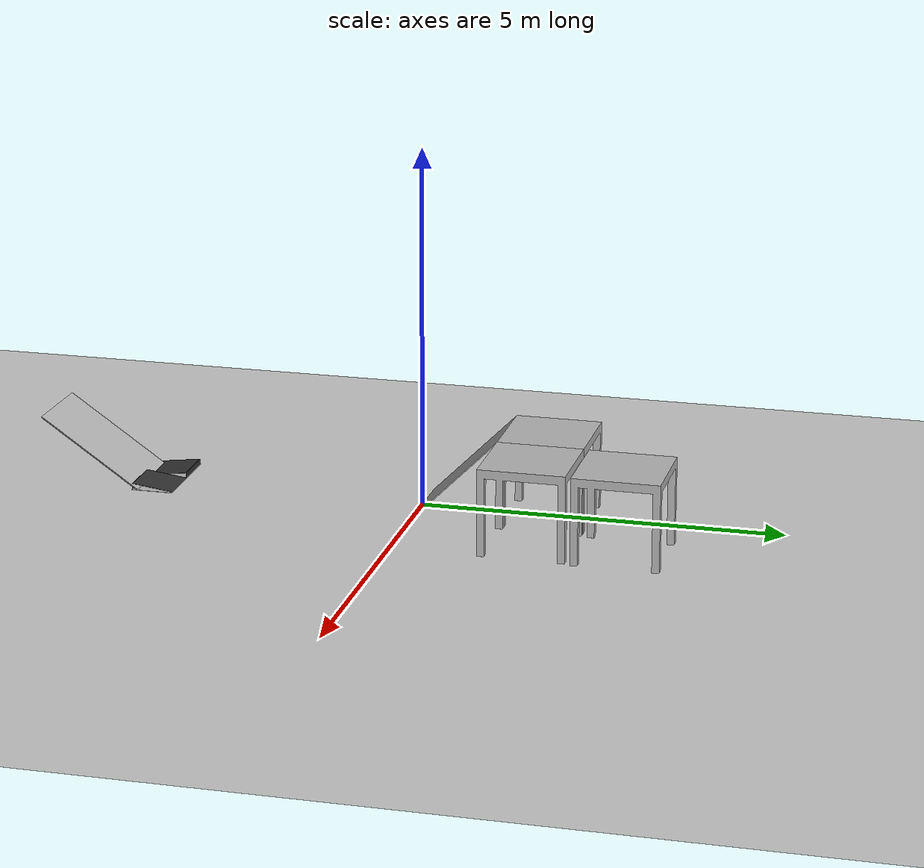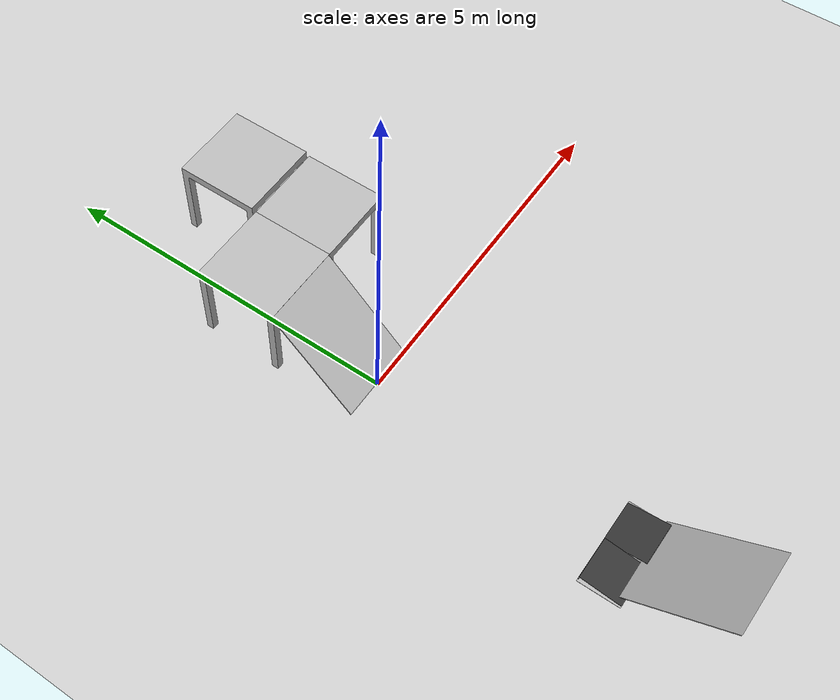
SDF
<sdf version="1.6">
 <world name="default">
  <light name="sun" type="directional">
   <pose>0 0 10 0 -0 0</pose>
   <diffuse>0.8 0.8 0.8 1</diffuse>
   <specular>0.1 0.1 0.1 1</specular>
   <attenuation>
    <range>1000</range>
    <constant>0.9</constant>
    <linear>0.01</linear>
    <quadratic>0.001</quadratic>
   </attenuation>
   <direction>-0.5 0.5 -1</direction>
  </light>
  <model name="ground_plane">
   <static>1</static>
   <link name="link">
    <collision name="collision">
     <geometry><plane><normal>0 0 1</normal><size>100 100</size></plane></geometry>
     <surface><friction><ode><mu>100</mu><mu2>50</mu2></ode></friction></surface>
    </collision>
    <visual name="visual">
     <cast_shadows>0</cast_shadows>
     <geometry><plane><normal>0 0 1</normal><size>100 100</size></plane></geometry>
     <material>
      <script><uri>file://media/materials/scripts/gazebo.material</uri><name>Gazebo/Grey</name></script>
     </material>
    </visual>
   </link>
  </model>
  <gravity>0 0 -9.8</gravity>
  <magnetic_field>6e-06 2.3e-05 -4.2e-05</magnetic_field>
  <atmosphere type="adiabatic"/>
  <physics name="default_physics" default="0" type="ode">
   <max_step_size>0.001</max_step_size>
   <real_time_factor>1</real_time_factor>
   <real_time_update_rate>1000</real_time_update_rate>
  </physics>
  <scene><ambient>0.4 0.4 0.4 1</ambient><background>0.7 0.7 0.7 1</background><shadows>1</shadows></scene>
  <spherical_coordinates>
   <surface_model>EARTH_WGS84</surface_model>
   <latitude_deg>0</latitude_deg>
   <longitude_deg>0</longitude_deg>
   <elevation>0</elevation>
   <heading_deg>0</heading_deg>
  </spherical_coordinates>
  <model name="nist_simple_ramp_120">
   <static>1</static>
   <link name="nist_simple_ramp_120_link">
    <collision name="collision">
     <geometry>
      <mesh><uri>model://nist_simple_ramp_120/meshes/nist_simple_ramp_120.dae</uri><scale>1 1 1</scale></mesh>
     </geometry>
    </collision>
    <visual name="visual">
     <geometry>
      <mesh><uri>model://nist_simple_ramp_120/meshes/nist_simple_ramp_120.dae</uri><scale>1 1 1</scale></mesh>
     </geometry>
    </visual>
   </link>
   <pose>0.014961 0.600904 0 0 -0 0</pose>
  </model>
  <model name="nist_elevated_floor_120">
   <static>1</static>
   <link name="nist_elevated_floor_120">
    <collision name="collision">
     <geometry>
      <mesh><uri>model://nist_elevated_floor_120/meshes/nist_elevated_floor_120.dae</uri><scale>1 1 1</scale></mesh>
     </geometry>
    </collision>
    <visual name="visual">
     <geometry>
      <mesh><uri>model://nist_elevated_floor_120/meshes/nist_elevated_floor_120.dae</uri><scale>1 1 1</scale></mesh>
     </geometry>
    </visual>
   </link>
   <pose>0.031154 1.77837 0 0 -0 0</pose>
  </model>
  <model name="frc2016_ramparts">
   <static>1</static>
   <link name="link">
    <visual name="platform">
     <pose>0 0 0.06967 0 -0 0</pose>
     <geometry><box><size>1.27 0.5969 0.003175</size></box></geometry>
    </visual>
    <collision name="platform">
     <pose>0 0 0.06967 0 -0 0</pose>
     <geometry><box><size>1.27 0.5969 0.003175</size></box></geometry>
    </collision>
    <visual name="ramp1">
     <pose>0.30472 0.00588 0.1109 -0.13 0 0</pose>
     <geometry><box><size>0.60957 0.588891 0.00462</size></box></geometry>
     <material><ambient>0.2 0.2 0.2 1</ambient><diffuse>0.2 0.2 0.2 1</diffuse></material>
    </visual>
    <collision name="ramp1">
     <pose>0.30472 0.00588 0.1109 -0.13 0 0</pose>
     <geometry><box><size>0.60957 0.588891 0.00462</size></box></geometry>
    </collision>
    <visual name="up1">
     <pose>0.30472 -0.28806 0.11072 0 -0 0</pose>
     <geometry><box><size>0.60957 0.00462 0.07872</size></box></geometry>
     <material><ambient>0.2 0.2 0.2 1</ambient><diffuse>0.2 0.2 0.2 1</diffuse></material>
    </visual>
    <collision name="up1">
     <pose>0.30472 -0.28806 0.11072 0 -0 0</pose>
     <geometry><box><size>0.60957 0.00462 0.07872</size></box></geometry>
    </collision>
    <visual name="ramp2">
     <pose>-0.30472 -0.00619 0.1109 0.13 -0 0</pose>
     <geometry><box><size>0.60957 0.588891 0.00462</size></box></geometry>
     <material><ambient>0.2 0.2 0.2 1</ambient><diffuse>0.2 0.2 0.2 1</diffuse></material>
    </visual>
    <collision name="ramp2">
     <pose>-0.30472 -0.00619 0.1109 0.13 -0 0</pose>
     <geometry><box><size>0.60957 0.588891 0.00462</size></box></geometry>
    </collision>
    <visual name="up2">
     <pose>-0.30472 0.28806 0.11072 0 -0 0</pose>
     <geometry><box><size>0.60957 0.00462 0.07872</size></box></geometry>
     <material><ambient>0.2 0.2 0.2 1</ambient><diffuse>0.2 0.2 0.2 1</diffuse></material>
    </visual>
    <collision name="up2">
     <pose>-0.30472 0.28806 0.11072 0 -0 0</pose>
     <geometry><box><size>0.60957 0.00462 0.07872</size></box></geometry>
    </collision>
   </link>
   <pose>-0.223494 -3.76897 -0.069534 0 -0 0</pose>
  </model>
  <model name="nist_elevated_floor_120_0">
   <static>1</static>
   <link name="nist_elevated_floor_120">
    <collision name="collision">
     <geometry>
      <mesh><uri>model://nist_elevated_floor_120/meshes/nist_elevated_floor_120.dae</uri><scale>1 1 1</scale></mesh>
     </geometry>
    </collision>
    <visual name="visual">
     <geometry>
      <mesh><uri>model://nist_elevated_floor_120/meshes/nist_elevated_floor_120.dae</uri><scale>1 1 1</scale></mesh>
     </geometry>
    </visual>
   </link>
   <pose>1.18472 1.77636 0 0 -0 0</pose>
  </model>
  <model name="nist_elevated_floor_120_1">
   <static>1</static>
   <link name="nist_elevated_floor_120">
    <collision name="collision">
     <geometry>
      <mesh><uri>model://nist_elevated_floor_120/meshes/nist_elevated_floor_120.dae</uri><scale>1 1 1</scale></mesh>
     </geometry>
    </collision>
    <visual name="visual">
     <geometry>
      <mesh><uri>model://nist_elevated_floor_120/meshes/nist_elevated_floor_120.dae</uri><scale>1 1 1</scale></mesh>
     </geometry>
    </visual>
   </link>
   <pose>1.22226 3.03303 0 0 -0 0</pose>
  </model>
  <model name="nist_simple_ramp_120_0">
   <static>1</static>
   <link name="nist_simple_ramp_120_link">
    <collision name="collision">
     <geometry>
      <mesh><uri>model://nist_simple_ramp_120/meshes/nist_simple_ramp_120.dae</uri><scale>1 1 1</scale></mesh>
     </geometry>
    </collision>
    <visual name="visual">
     <geometry>
      <mesh><uri>model://nist_simple_ramp_120/meshes/nist_simple_ramp_120.dae</uri><scale>1 1 1</scale></mesh>
     </geometry>
    </visual>
   </link>
   <pose>-0.163887 -4.54925 -0.117962 -0.189455 0.013306 3.13109</pose>
  </model>
 </world>
</sdf>
